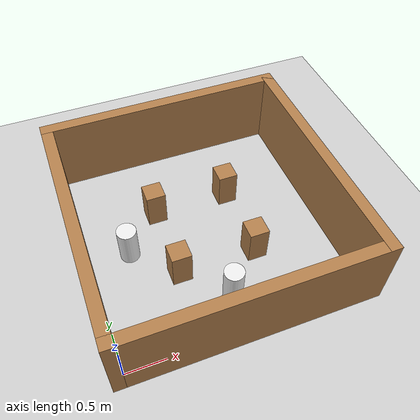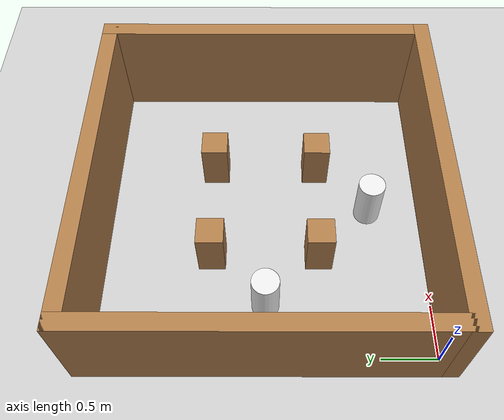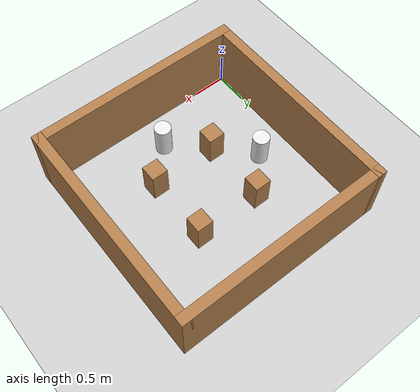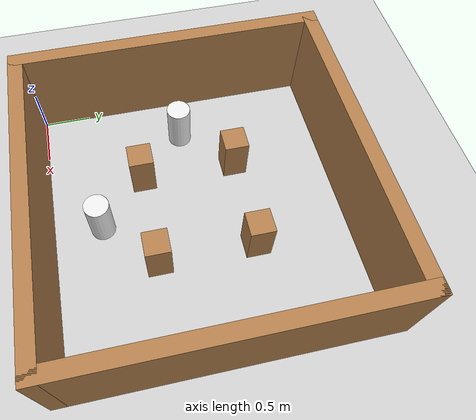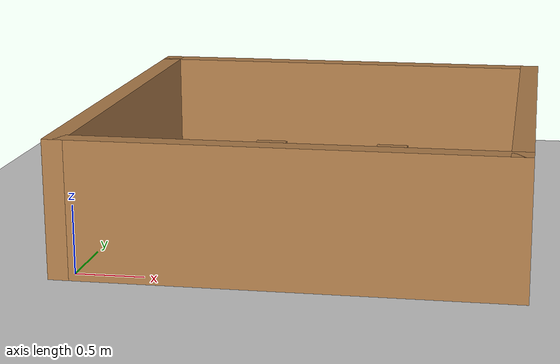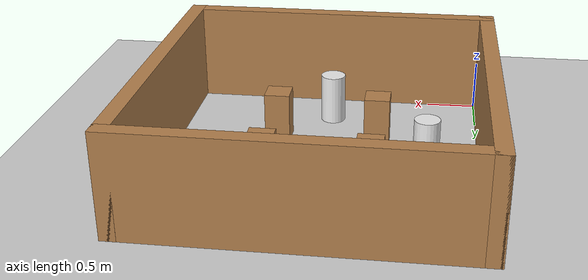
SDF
<sdf version="1.7">
 <world name="default">
  <light name="sun" type="directional">
   <pose>0 0 100 0 -0 0</pose>
   <diffuse>0.8 0.8 0.8 1</diffuse>
   <specular>0.2 0.2 0.2 1</specular>
   <attenuation>
    <range>1000</range>
    <constant>0.9</constant>
    <linear>0.01</linear>
    <quadratic>0.001</quadratic>
   </attenuation>
   <direction>-0.5 0.1 -0.9</direction>
   <spot><inner_angle>0</inner_angle><outer_angle>0</outer_angle><falloff>0</falloff></spot>
  </light>
  <light name="extra_directional_light" type="directional">
   <pose>1.5 1.5 100 0 0 0</pose>
   <diffuse>1 1 1 1</diffuse>
   <specular>1 1 1 1</specular>
   <direction>0.5 0.5 -1</direction>
  </light>
  <model name="ground_plane">
   <static>1</static>
   <link name="link">
    <collision name="collision">
     <geometry><plane><normal>0 0 1</normal><size>100 100</size></plane></geometry>
     <surface>
      <contact><collide_bitmask>65535</collide_bitmask></contact>
      <friction><ode><mu>100</mu><mu2>50</mu2></ode></friction>
     </surface>
    </collision>
    <visual name="visual">
     <cast_shadows>0</cast_shadows>
     <geometry><plane><normal>0 0 1</normal><size>100 100</size></plane></geometry>
     <material>
      <script><uri>file://media/materials/scripts/gazebo.material</uri><name>Gazebo/Grey</name></script>
      <ambient>0.75 0.75 0.75 1</ambient>
     </material>
    </visual>
   </link>
  </model>
  <gravity>0 0 -9.8</gravity>
  <magnetic_field>6e-06 2.3e-05 -4.2e-05</magnetic_field>
  <atmosphere type="adiabatic"/>
  <physics type="ode">
   <max_step_size>0.001</max_step_size>
   <real_time_factor>1</real_time_factor>
   <real_time_update_rate>1000</real_time_update_rate>
  </physics>
  <scene><ambient>0.8 0.8 0.8 1</ambient><background>1 1 1 1</background><shadows>1</shadows></scene>
  <spherical_coordinates>
   <surface_model>EARTH_WGS84</surface_model>
   <latitude_deg>0</latitude_deg>
   <longitude_deg>0</longitude_deg>
   <elevation>0</elevation>
   <heading_deg>0</heading_deg>
  </spherical_coordinates>
  <model name="bosOrt">
   <pose>1.5 1.5 0 0 -0 0</pose>
   <link name="Wall_0">
    <collision name="Wall_0_Collision">
     <geometry><box><size>3.3 0.15 1</size></box></geometry>
     <pose>0 0 0.5 0 -0 0</pose>
    </collision>
    <visual name="Wall_0_Visual">
     <pose>0 0 0.5 0 -0 0</pose>
     <geometry><box><size>3.3 0.15 1</size></box></geometry>
     <material>
      <script><uri>file://media/materials/scripts/gazebo.material</uri><name>Gazebo/Wood</name></script>
      <ambient>1 1 1 1</ambient>
     </material>
     <meta><layer>0</layer></meta>
    </visual>
    <pose>-0 -1.575 0 0 -0 3.14159</pose>
   </link>
   <link name="Wall_1">
    <collision name="Wall_1_Collision">
     <geometry><box><size>3.3 0.15 1</size></box></geometry>
     <pose>0 0 0.5 0 -0 0</pose>
    </collision>
    <visual name="Wall_1_Visual">
     <pose>0 0 0.5 0 -0 0</pose>
     <geometry><box><size>3.3 0.15 1</size></box></geometry>
     <material>
      <script><uri>file://media/materials/scripts/gazebo.material</uri><name>Gazebo/Wood</name></script>
      <ambient>1 1 1 1</ambient>
     </material>
     <meta><layer>0</layer></meta>
    </visual>
    <pose>-1.575 0 0 0 -0 1.5708</pose>
   </link>
   <link name="Wall_2">
    <collision name="Wall_2_Collision">
     <geometry><box><size>3.3 0.15 1</size></box></geometry>
     <pose>0 0 0.5 0 -0 0</pose>
    </collision>
    <visual name="Wall_2_Visual">
     <pose>0 0 0.5 0 -0 0</pose>
     <geometry><box><size>3.3 0.15 1</size></box></geometry>
     <material>
      <script><uri>file://media/materials/scripts/gazebo.material</uri><name>Gazebo/Wood</name></script>
      <ambient>1 1 1 1</ambient>
     </material>
     <meta><layer>0</layer></meta>
    </visual>
    <pose>-0 1.575 0 0 -0 0</pose>
   </link>
   <link name="Wall_3">
    <collision name="Wall_3_Collision">
     <geometry><box><size>3.3 0.15 1</size></box></geometry>
     <pose>0 0 0.5 0 -0 0</pose>
    </collision>
    <visual name="Wall_3_Visual">
     <pose>0 0 0.5 0 -0 0</pose>
     <geometry><box><size>3.3 0.15 1</size></box></geometry>
     <material>
      <script><uri>file://media/materials/scripts/gazebo.material</uri><name>Gazebo/Wood</name></script>
      <ambient>1 1 1 1</ambient>
     </material>
     <meta><layer>0</layer></meta>
    </visual>
    <pose>1.575 0 0 0 -0 -1.5708</pose>
   </link>
   <static>1</static>
  </model>
  <model name="duraganOrt">
   <link name="link_0">
    <inertial>
     <mass>1000</mass>
     <inertia><ixx>26.0417</ixx><ixy>0</ixy><ixz>0</ixz><iyy>26.0417</iyy><iyz>0</iyz><izz>10.4167</izz></inertia>
    </inertial>
    <pose>-0.5 -0.5 0 0 -0 0</pose>
    <visual name="visual">
     <geometry><box><size>0.25 0.25 0.5</size></box></geometry>
     <material>
      <lighting>1</lighting>
      <script><uri>file://media/materials/scripts/gazebo.material</uri><name>Gazebo/Wood</name></script>
      <shader type="pixel"><normal_map>__default__</normal_map></shader>
      <ambient>1 1 1 1</ambient>
      <diffuse>0.7 0.7 0.7 1</diffuse>
      <specular>0.01 0.01 0.01 1</specular>
      <emissive>0 0 0 1</emissive>
     </material>
    </visual>
    <collision name="collision">
     <geometry><box><size>0.25 0.25 0.5</size></box></geometry>
     <surface>
      <friction>
       <ode><mu>1</mu><mu2>1</mu2><fdir1>0 0 0</fdir1><slip1>0</slip1><slip2>0</slip2></ode>
       <torsional>
        <coefficient>1</coefficient>
        <patch_radius>0</patch_radius>
        <surface_radius>0</surface_radius>
        <use_patch_radius>1</use_patch_radius>
        <ode><slip>0</slip></ode>
       </torsional>
      </friction>
      <bounce><restitution_coefficient>0</restitution_coefficient><threshold>1e+06</threshold></bounce>
      <contact>
       <collide_without_contact>0</collide_without_contact>
       <collide_without_contact_bitmask>1</collide_without_contact_bitmask>
       <collide_bitmask>1</collide_bitmask>
       <ode>
        <soft_cfm>0</soft_cfm>
        <soft_erp>0.2</soft_erp>
        <kp>1e+13</kp>
        <kd>1</kd>
        <max_vel>0.01</max_vel>
        <min_depth>0</min_depth>
       </ode>
       <bullet>
        <split_impulse>1</split_impulse>
        <split_impulse_penetration_threshold>-0.01</split_impulse_penetration_threshold>
        <soft_cfm>0</soft_cfm>
        <soft_erp>0.2</soft_erp>
        <kp>1e+13</kp>
        <kd>1</kd>
       </bullet>
      </contact>
     </surface>
    </collision>
   </link>
   <link name="link_0_clone">
    <inertial>
     <mass>1000</mass>
     <inertia><ixx>26.0417</ixx><ixy>0</ixy><ixz>0</ixz><iyy>26.0417</iyy><iyz>0</iyz><izz>10.4167</izz></inertia>
    </inertial>
    <pose>0.5 -0.5 0 0 -0 0</pose>
    <visual name="visual">
     <geometry><box><size>0.25 0.25 0.5</size></box></geometry>
     <material>
      <lighting>1</lighting>
      <script><uri>file://media/materials/scripts/gazebo.material</uri><name>Gazebo/Wood</name></script>
      <shader type="pixel"><normal_map>__default__</normal_map></shader>
      <ambient>1 1 1 1</ambient>
      <diffuse>0.7 0.7 0.7 1</diffuse>
      <specular>0.01 0.01 0.01 1</specular>
      <emissive>0 0 0 1</emissive>
     </material>
    </visual>
    <collision name="collision">
     <geometry><box><size>0.25 0.25 0.5</size></box></geometry>
     <surface>
      <friction>
       <ode><mu>1</mu><mu2>1</mu2><fdir1>0 0 0</fdir1><slip1>0</slip1><slip2>0</slip2></ode>
       <torsional>
        <coefficient>1</coefficient>
        <patch_radius>0</patch_radius>
        <surface_radius>0</surface_radius>
        <use_patch_radius>1</use_patch_radius>
        <ode><slip>0</slip></ode>
       </torsional>
      </friction>
      <bounce><restitution_coefficient>0</restitution_coefficient><threshold>1e+06</threshold></bounce>
      <contact>
       <collide_without_contact>0</collide_without_contact>
       <collide_without_contact_bitmask>1</collide_without_contact_bitmask>
       <collide_bitmask>1</collide_bitmask>
       <ode>
        <soft_cfm>0</soft_cfm>
        <soft_erp>0.2</soft_erp>
        <kp>1e+13</kp>
        <kd>1</kd>
        <max_vel>0.01</max_vel>
        <min_depth>0</min_depth>
       </ode>
       <bullet>
        <split_impulse>1</split_impulse>
        <split_impulse_penetration_threshold>-0.01</split_impulse_penetration_threshold>
        <soft_cfm>0</soft_cfm>
        <soft_erp>0.2</soft_erp>
        <kp>1e+13</kp>
        <kd>1</kd>
       </bullet>
      </contact>
     </surface>
    </collision>
   </link>
   <link name="link_0_clone_0">
    <inertial>
     <mass>1000</mass>
     <inertia><ixx>26.0417</ixx><ixy>0</ixy><ixz>0</ixz><iyy>26.0417</iyy><iyz>0</iyz><izz>10.4167</izz></inertia>
    </inertial>
    <pose>-0.5 0.5 0 0 -0 0</pose>
    <visual name="visual">
     <geometry><box><size>0.25 0.25 0.5</size></box></geometry>
     <material>
      <lighting>1</lighting>
      <script><uri>file://media/materials/scripts/gazebo.material</uri><name>Gazebo/Wood</name></script>
      <shader type="pixel"><normal_map>__default__</normal_map></shader>
      <ambient>1 1 1 1</ambient>
      <diffuse>0.7 0.7 0.7 1</diffuse>
      <specular>0.01 0.01 0.01 1</specular>
      <emissive>0 0 0 1</emissive>
     </material>
    </visual>
    <collision name="collision">
     <geometry><box><size>0.25 0.25 0.5</size></box></geometry>
     <surface>
      <friction>
       <ode><mu>1</mu><mu2>1</mu2><fdir1>0 0 0</fdir1><slip1>0</slip1><slip2>0</slip2></ode>
       <torsional>
        <coefficient>1</coefficient>
        <patch_radius>0</patch_radius>
        <surface_radius>0</surface_radius>
        <use_patch_radius>1</use_patch_radius>
        <ode><slip>0</slip></ode>
       </torsional>
      </friction>
      <bounce><restitution_coefficient>0</restitution_coefficient><threshold>1e+06</threshold></bounce>
      <contact>
       <collide_without_contact>0</collide_without_contact>
       <collide_without_contact_bitmask>1</collide_without_contact_bitmask>
       <collide_bitmask>1</collide_bitmask>
       <ode>
        <soft_cfm>0</soft_cfm>
        <soft_erp>0.2</soft_erp>
        <kp>1e+13</kp>
        <kd>1</kd>
        <max_vel>0.01</max_vel>
        <min_depth>0</min_depth>
       </ode>
       <bullet>
        <split_impulse>1</split_impulse>
        <split_impulse_penetration_threshold>-0.01</split_impulse_penetration_threshold>
        <soft_cfm>0</soft_cfm>
        <soft_erp>0.2</soft_erp>
        <kp>1e+13</kp>
        <kd>1</kd>
       </bullet>
      </contact>
     </surface>
    </collision>
   </link>
   <link name="link_0_clone_1">
    <inertial>
     <mass>1000</mass>
     <inertia><ixx>26.0417</ixx><ixy>0</ixy><ixz>0</ixz><iyy>26.0417</iyy><iyz>0</iyz><izz>10.4167</izz></inertia>
    </inertial>
    <pose>0.5 0.5 0 0 -0 0</pose>
    <visual name="visual">
     <geometry><box><size>0.25 0.25 0.5</size></box></geometry>
     <material>
      <lighting>1</lighting>
      <script><uri>file://media/materials/scripts/gazebo.material</uri><name>Gazebo/Wood</name></script>
      <shader type="pixel"><normal_map>__default__</normal_map></shader>
      <ambient>1 1 1 1</ambient>
      <diffuse>0.7 0.7 0.7 1</diffuse>
      <specular>0.01 0.01 0.01 1</specular>
      <emissive>0 0 0 1</emissive>
     </material>
    </visual>
    <collision name="collision">
     <geometry><box><size>0.25 0.25 0.5</size></box></geometry>
     <surface>
      <friction>
       <ode><mu>1</mu><mu2>1</mu2><fdir1>0 0 0</fdir1><slip1>0</slip1><slip2>0</slip2></ode>
       <torsional>
        <coefficient>1</coefficient>
        <patch_radius>0</patch_radius>
        <surface_radius>0</surface_radius>
        <use_patch_radius>1</use_patch_radius>
        <ode><slip>0</slip></ode>
       </torsional>
      </friction>
      <bounce><restitution_coefficient>0</restitution_coefficient><threshold>1e+06</threshold></bounce>
      <contact>
       <collide_without_contact>0</collide_without_contact>
       <collide_without_contact_bitmask>1</collide_without_contact_bitmask>
       <collide_bitmask>1</collide_bitmask>
       <ode>
        <soft_cfm>0</soft_cfm>
        <soft_erp>0.2</soft_erp>
        <kp>1e+13</kp>
        <kd>1</kd>
        <max_vel>0.01</max_vel>
        <min_depth>0</min_depth>
       </ode>
       <bullet>
        <split_impulse>1</split_impulse>
        <split_impulse_penetration_threshold>-0.01</split_impulse_penetration_threshold>
        <soft_cfm>0</soft_cfm>
        <soft_erp>0.2</soft_erp>
        <kp>1e+13</kp>
        <kd>1</kd>
       </bullet>
      </contact>
     </surface>
    </collision>
   </link>
   <static>0</static>
   <pose>1.5 1.5 0.25 0 -0 0</pose>
  </model>
  <model name="hareketliEngel">
   <link name="link_0">
    <inertial>
     <mass>1000</mass>
     <inertia><ixx>24.7396</ixx><ixy>0</ixy><ixz>0</ixz><iyy>24.7396</iyy><iyz>0</iyz><izz>7.8125</izz></inertia>
    </inertial>
    <visual name="visual">
     <geometry><cylinder><radius>0.125</radius><length>0.5</length></cylinder></geometry>
     <material>
      <lighting>1</lighting>
      <script><uri>file://media/materials/scripts/gazebo.material</uri><name>Gazebo/White</name></script>
      <shader type="pixel"><normal_map>__default__</normal_map></shader>
      <ambient>1 1 1 1</ambient>
      <diffuse>0.7 0.7 0.7 1</diffuse>
      <specular>0.01 0.01 0.01 1</specular>
      <emissive>0 0 0 1</emissive>
     </material>
    </visual>
    <collision name="collision">
     <geometry><cylinder><radius>0.125</radius><length>0.5</length></cylinder></geometry>
     <surface>
      <friction>
       <ode><mu>1</mu><mu2>1</mu2><fdir1>0 0 0</fdir1><slip1>0</slip1><slip2>0</slip2></ode>
       <torsional>
        <coefficient>1</coefficient>
        <patch_radius>0</patch_radius>
        <surface_radius>0</surface_radius>
        <use_patch_radius>1</use_patch_radius>
        <ode><slip>0</slip></ode>
       </torsional>
      </friction>
      <bounce><restitution_coefficient>0</restitution_coefficient><threshold>1e+06</threshold></bounce>
      <contact>
       <collide_without_contact>0</collide_without_contact>
       <collide_without_contact_bitmask>1</collide_without_contact_bitmask>
       <collide_bitmask>1</collide_bitmask>
       <ode>
        <soft_cfm>0</soft_cfm>
        <soft_erp>0.2</soft_erp>
        <kp>1e+13</kp>
        <kd>1</kd>
        <max_vel>0.01</max_vel>
        <min_depth>0</min_depth>
       </ode>
       <bullet>
        <split_impulse>1</split_impulse>
        <split_impulse_penetration_threshold>-0.01</split_impulse_penetration_threshold>
        <soft_cfm>0</soft_cfm>
        <soft_erp>0.2</soft_erp>
        <kp>1e+13</kp>
        <kd>1</kd>
       </bullet>
      </contact>
     </surface>
    </collision>
   </link>
   <static>0</static>
   <pose>0.5 1.5 0.25 0 -0 0</pose>
  </model>
  <model name="hareketliEngel_clone">
   <link name="link_0">
    <inertial>
     <mass>1000</mass>
     <inertia><ixx>24.7396</ixx><ixy>0</ixy><ixz>0</ixz><iyy>24.7396</iyy><iyz>0</iyz><izz>7.8125</izz></inertia>
    </inertial>
    <visual name="visual">
     <geometry><cylinder><radius>0.125</radius><length>0.5</length></cylinder></geometry>
     <material>
      <lighting>1</lighting>
      <script><uri>file://media/materials/scripts/gazebo.material</uri><name>Gazebo/White</name></script>
      <shader type="pixel"><normal_map>__default__</normal_map></shader>
      <ambient>1 1 1 1</ambient>
      <diffuse>0.7 0.7 0.7 1</diffuse>
      <specular>0.01 0.01 0.01 1</specular>
      <emissive>0 0 0 1</emissive>
     </material>
    </visual>
    <collision name="collision">
     <geometry><cylinder><radius>0.125</radius><length>0.5</length></cylinder></geometry>
     <surface>
      <friction>
       <ode><mu>1</mu><mu2>1</mu2><fdir1>0 0 0</fdir1><slip1>0</slip1><slip2>0</slip2></ode>
       <torsional>
        <coefficient>1</coefficient>
        <patch_radius>0</patch_radius>
        <surface_radius>0</surface_radius>
        <use_patch_radius>1</use_patch_radius>
        <ode><slip>0</slip></ode>
       </torsional>
      </friction>
      <bounce><restitution_coefficient>0</restitution_coefficient><threshold>1e+06</threshold></bounce>
      <contact>
       <collide_without_contact>0</collide_without_contact>
       <collide_without_contact_bitmask>1</collide_without_contact_bitmask>
       <collide_bitmask>1</collide_bitmask>
       <ode>
        <soft_cfm>0</soft_cfm>
        <soft_erp>0.2</soft_erp>
        <kp>1e+13</kp>
        <kd>1</kd>
        <max_vel>0.01</max_vel>
        <min_depth>0</min_depth>
       </ode>
       <bullet>
        <split_impulse>1</split_impulse>
        <split_impulse_penetration_threshold>-0.01</split_impulse_penetration_threshold>
        <soft_cfm>0</soft_cfm>
        <soft_erp>0.2</soft_erp>
        <kp>1e+13</kp>
        <kd>1</kd>
       </bullet>
      </contact>
     </surface>
    </collision>
   </link>
   <static>0</static>
   <pose>1.5 0.5 0.25 0 -0 0</pose>
  </model>
 </world>
</sdf>
